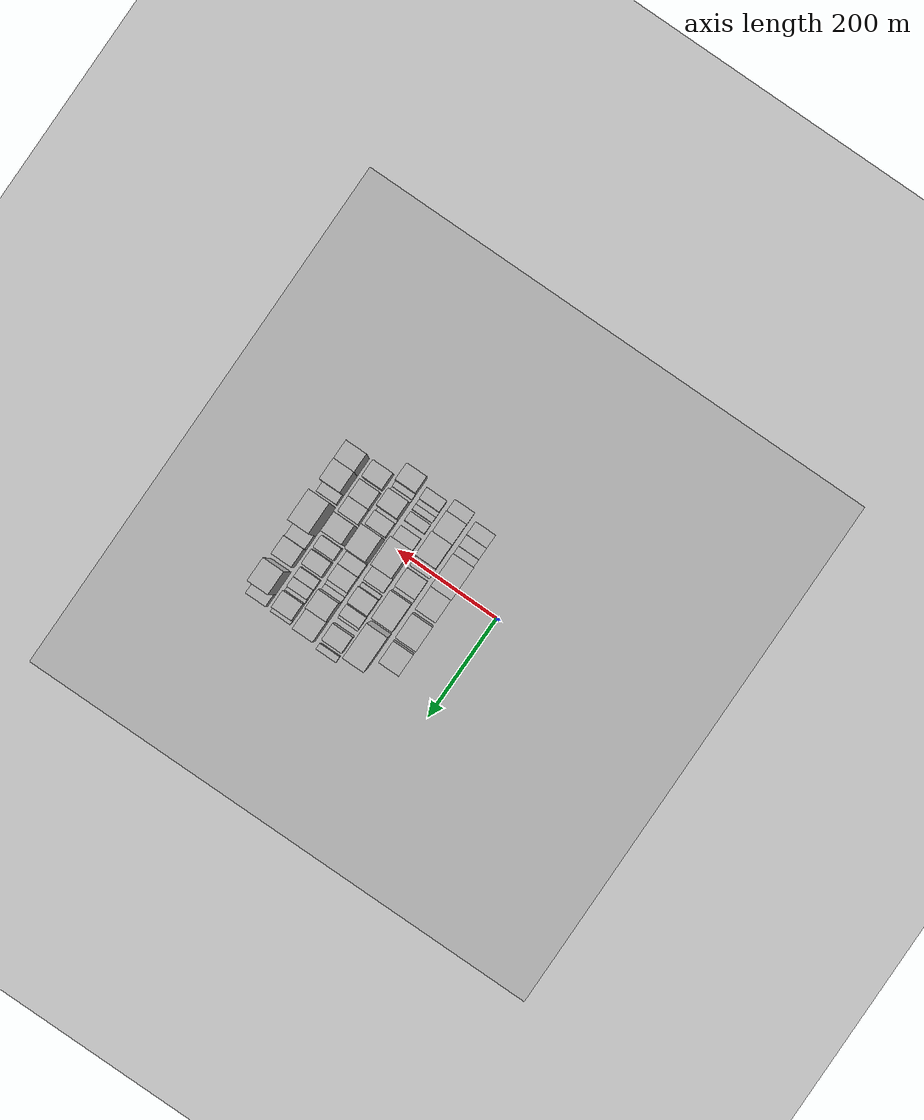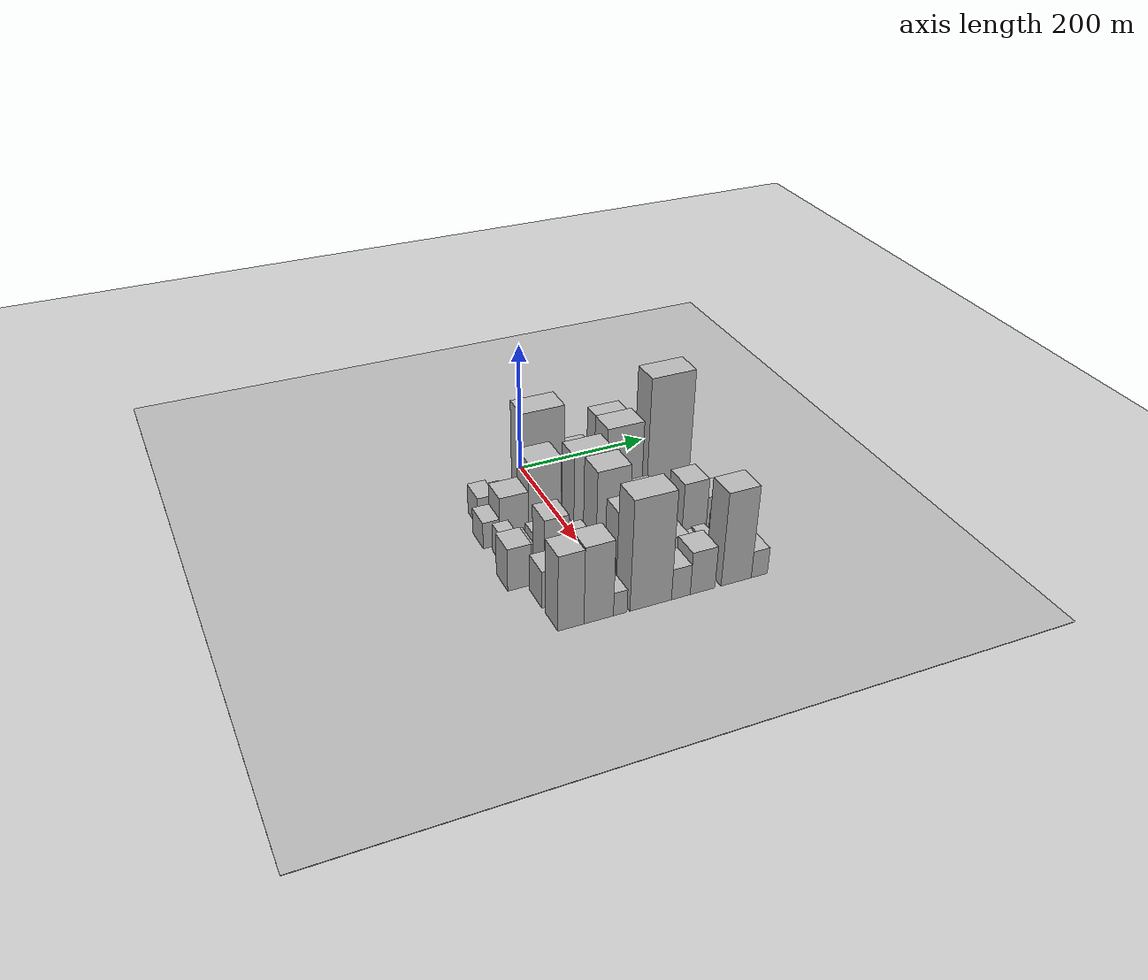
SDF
<sdf version="1.6">
 <world name="default">
  <include><name>ground_plane_1</name><uri>model://HANNAS_ground_plane</uri></include>
  <include>
   <name>ground_plane_2</name>
   <uri>model://HANNAS_ground_plane</uri>
   <pose>100 0 0  0 0 0</pose>
  </include>
  <model name="building_22">
   <static>1</static>
   <pose>100.0000 -98.4155 0 0.000000 0.000000 0.000000</pose>
   <link name="link">
    <pose>0 0 24.00 0 0 0</pose>
    <collision name="collision"><geometry><box><size>40.0000 26.1698 48.0000</size></box></geometry></collision>
    <visual name="visual">
     <cast_shadows>0</cast_shadows>
     <geometry><box><size>40.0000 26.1698 48.0000</size></box></geometry>
     <material>
      <script>
       <uri>model://HANNAS_wall/materials/scripts</uri>
       <uri>model://HANNAS_wall/materials/textures</uri>
       <name>vrc/HANNAS_wall</name>
      </script>
     </material>
    </visual>
   </link>
  </model>
  <model name="building_23">
   <static>1</static>
   <pose>100.0000 -74.0926 0 0.000000 0.000000 0.000000</pose>
   <link name="link">
    <pose>0 0 21.00 0 0 0</pose>
    <collision name="collision"><geometry><box><size>40.0000 22.4760 42.0000</size></box></geometry></collision>
    <visual name="visual">
     <cast_shadows>0</cast_shadows>
     <geometry><box><size>40.0000 22.4760 42.0000</size></box></geometry>
     <material>
      <script>
       <uri>model://HANNAS_wall/materials/scripts</uri>
       <uri>model://HANNAS_wall/materials/textures</uri>
       <name>vrc/HANNAS_wall</name>
      </script>
     </material>
    </visual>
   </link>
  </model>
  <model name="building_24">
   <static>1</static>
   <pose>100.0000 -54.2454 0 0.000000 0.000000 0.000000</pose>
   <link name="link">
    <pose>0 0 16.50 0 0 0</pose>
    <collision name="collision"><geometry><box><size>40.0000 17.2185 33.0000</size></box></geometry></collision>
    <visual name="visual">
     <cast_shadows>0</cast_shadows>
     <geometry><box><size>40.0000 17.2185 33.0000</size></box></geometry>
     <material>
      <script>
       <uri>model://HANNAS_wall/materials/scripts</uri>
       <uri>model://HANNAS_wall/materials/textures</uri>
       <name>vrc/HANNAS_wall</name>
      </script>
     </material>
    </visual>
   </link>
  </model>
  <model name="building_25">
   <static>1</static>
   <pose>100.0000 -14.2065 0 0.000000 0.000000 0.000000</pose>
   <link name="link">
    <pose>0 0 82.50 0 0 0</pose>
    <collision name="collision"><geometry><box><size>40.0000 62.8592 165.0000</size></box></geometry></collision>
    <visual name="visual">
     <cast_shadows>0</cast_shadows>
     <geometry><box><size>40.0000 62.8592 165.0000</size></box></geometry>
     <material>
      <script>
       <uri>model://HANNAS_wall/materials/scripts</uri>
       <uri>model://HANNAS_wall/materials/textures</uri>
       <name>vrc/HANNAS_wall</name>
      </script>
     </material>
    </visual>
   </link>
  </model>
  <model name="building_26">
   <static>1</static>
   <pose>100.0000 39.8798 0 0.000000 0.000000 0.000000</pose>
   <link name="link">
    <pose>0 0 43.50 0 0 0</pose>
    <collision name="collision"><geometry><box><size>40.0000 45.3134 87.0000</size></box></geometry></collision>
    <visual name="visual">
     <cast_shadows>0</cast_shadows>
     <geometry><box><size>40.0000 45.3134 87.0000</size></box></geometry>
     <material>
      <script>
       <uri>model://HANNAS_wall/materials/scripts</uri>
       <uri>model://HANNAS_wall/materials/textures</uri>
       <name>vrc/HANNAS_wall</name>
      </script>
     </material>
    </visual>
   </link>
  </model>
  <model name="building_27">
   <static>1</static>
   <pose>100.0000 93.4120 0 0.000000 0.000000 0.000000</pose>
   <link name="link">
    <pose>0 0 64.50 0 0 0</pose>
    <collision name="collision"><geometry><box><size>40.0000 47.7509 129.0000</size></box></geometry></collision>
    <visual name="visual">
     <cast_shadows>0</cast_shadows>
     <geometry><box><size>40.0000 47.7509 129.0000</size></box></geometry>
     <material>
      <script>
       <uri>model://HANNAS_wall/materials/scripts</uri>
       <uri>model://HANNAS_wall/materials/textures</uri>
       <name>vrc/HANNAS_wall</name>
      </script>
     </material>
    </visual>
   </link>
  </model>
  <model name="building_28">
   <static>1</static>
   <pose>100.0000 146.5997 0 0.000000 0.000000 0.000000</pose>
   <link name="link">
    <pose>0 0 37.50 0 0 0</pose>
    <collision name="collision"><geometry><box><size>40.0000 42.6245 75.0000</size></box></geometry></collision>
    <visual name="visual">
     <cast_shadows>0</cast_shadows>
     <geometry><box><size>40.0000 42.6245 75.0000</size></box></geometry>
     <material>
      <script>
       <uri>model://HANNAS_wall/materials/scripts</uri>
       <uri>model://HANNAS_wall/materials/textures</uri>
       <name>vrc/HANNAS_wall</name>
      </script>
     </material>
    </visual>
   </link>
  </model>
  <model name="building_64">
   <static>1</static>
   <pose>149.0000 -110.4302 0 0.000000 0.000000 0.000000</pose>
   <link name="link">
    <pose>0 0 21.00 0 0 0</pose>
    <collision name="collision"><geometry><box><size>40.0000 24.3075 42.0000</size></box></geometry></collision>
    <visual name="visual">
     <cast_shadows>0</cast_shadows>
     <geometry><box><size>40.0000 24.3075 42.0000</size></box></geometry>
     <material>
      <script>
       <uri>model://HANNAS_wall/materials/scripts</uri>
       <uri>model://HANNAS_wall/materials/textures</uri>
       <name>vrc/HANNAS_wall</name>
      </script>
     </material>
    </visual>
   </link>
  </model>
  <model name="building_65">
   <static>1</static>
   <pose>149.0000 -77.4382 0 0.000000 0.000000 0.000000</pose>
   <link name="link">
    <pose>0 0 37.50 0 0 0</pose>
    <collision name="collision"><geometry><box><size>40.0000 41.6766 75.0000</size></box></geometry></collision>
    <visual name="visual">
     <cast_shadows>0</cast_shadows>
     <geometry><box><size>40.0000 41.6766 75.0000</size></box></geometry>
     <material>
      <script>
       <uri>model://HANNAS_wall/materials/scripts</uri>
       <uri>model://HANNAS_wall/materials/textures</uri>
       <name>vrc/HANNAS_wall</name>
      </script>
     </material>
    </visual>
   </link>
  </model>
  <model name="building_66">
   <static>1</static>
   <pose>149.0000 -33.0633 0 0.000000 0.000000 0.000000</pose>
   <link name="link">
    <pose>0 0 60.00 0 0 0</pose>
    <collision name="collision"><geometry><box><size>40.0000 47.0731 120.0000</size></box></geometry></collision>
    <visual name="visual">
     <cast_shadows>0</cast_shadows>
     <geometry><box><size>40.0000 47.0731 120.0000</size></box></geometry>
     <material>
      <script>
       <uri>model://HANNAS_wall/materials/scripts</uri>
       <uri>model://HANNAS_wall/materials/textures</uri>
       <name>vrc/HANNAS_wall</name>
      </script>
     </material>
    </visual>
   </link>
  </model>
  <model name="building_67">
   <static>1</static>
   <pose>149.0000 -0.1953 0 0.000000 0.000000 0.000000</pose>
   <link name="link">
    <pose>0 0 16.50 0 0 0</pose>
    <collision name="collision"><geometry><box><size>40.0000 18.6629 33.0000</size></box></geometry></collision>
    <visual name="visual">
     <cast_shadows>0</cast_shadows>
     <geometry><box><size>40.0000 18.6629 33.0000</size></box></geometry>
     <material>
      <script>
       <uri>model://HANNAS_wall/materials/scripts</uri>
       <uri>model://HANNAS_wall/materials/textures</uri>
       <name>vrc/HANNAS_wall</name>
      </script>
     </material>
    </visual>
   </link>
  </model>
  <model name="building_68">
   <static>1</static>
   <pose>149.0000 32.4968 0 0.000000 0.000000 0.000000</pose>
   <link name="link">
    <pose>0 0 36.00 0 0 0</pose>
    <collision name="collision"><geometry><box><size>40.0000 36.7213 72.0000</size></box></geometry></collision>
    <visual name="visual">
     <cast_shadows>0</cast_shadows>
     <geometry><box><size>40.0000 36.7213 72.0000</size></box></geometry>
     <material>
      <script>
       <uri>model://HANNAS_wall/materials/scripts</uri>
       <uri>model://HANNAS_wall/materials/textures</uri>
       <name>vrc/HANNAS_wall</name>
      </script>
     </material>
    </visual>
   </link>
  </model>
  <model name="building_69">
   <static>1</static>
   <pose>149.0000 54.6834 0 0.000000 0.000000 0.000000</pose>
   <link name="link">
    <pose>0 0 9.00 0 0 0</pose>
    <collision name="collision"><geometry><box><size>40.0000 7.6520 18.0000</size></box></geometry></collision>
    <visual name="visual">
     <cast_shadows>0</cast_shadows>
     <geometry><box><size>40.0000 7.6520 18.0000</size></box></geometry>
     <material>
      <script>
       <uri>model://HANNAS_wall/materials/scripts</uri>
       <uri>model://HANNAS_wall/materials/textures</uri>
       <name>vrc/HANNAS_wall</name>
      </script>
     </material>
    </visual>
   </link>
  </model>
  <model name="building_70">
   <static>1</static>
   <pose>149.0000 85.5935 0 0.000000 0.000000 0.000000</pose>
   <link name="link">
    <pose>0 0 72.00 0 0 0</pose>
    <collision name="collision"><geometry><box><size>40.0000 54.1682 144.0000</size></box></geometry></collision>
    <visual name="visual">
     <cast_shadows>0</cast_shadows>
     <geometry><box><size>40.0000 54.1682 144.0000</size></box></geometry>
     <material>
      <script>
       <uri>model://HANNAS_wall/materials/scripts</uri>
       <uri>model://HANNAS_wall/materials/textures</uri>
       <name>vrc/HANNAS_wall</name>
      </script>
     </material>
    </visual>
   </link>
  </model>
  <model name="building_71">
   <static>1</static>
   <pose>149.0000 153.6814 0 0.000000 0.000000 0.000000</pose>
   <link name="link">
    <pose>0 0 103.50 0 0 0</pose>
    <collision name="collision"><geometry><box><size>40.0000 66.0074 207.0000</size></box></geometry></collision>
    <visual name="visual">
     <cast_shadows>0</cast_shadows>
     <geometry><box><size>40.0000 66.0074 207.0000</size></box></geometry>
     <material>
      <script>
       <uri>model://HANNAS_wall/materials/scripts</uri>
       <uri>model://HANNAS_wall/materials/textures</uri>
       <name>vrc/HANNAS_wall</name>
      </script>
     </material>
    </visual>
   </link>
  </model>
  <model name="building_112">
   <static>1</static>
   <pose>198.0000 -101.4188 0 0.000000 0.000000 0.000000</pose>
   <link name="link">
    <pose>0 0 22.50 0 0 0</pose>
    <collision name="collision"><geometry><box><size>40.0000 22.6207 45.0000</size></box></geometry></collision>
    <visual name="visual">
     <cast_shadows>0</cast_shadows>
     <geometry><box><size>40.0000 22.6207 45.0000</size></box></geometry>
     <material>
      <script>
       <uri>model://HANNAS_wall/materials/scripts</uri>
       <uri>model://HANNAS_wall/materials/textures</uri>
       <name>vrc/HANNAS_wall</name>
      </script>
     </material>
    </visual>
   </link>
  </model>
  <model name="building_113">
   <static>1</static>
   <pose>198.0000 -85.3148 0 0.000000 0.000000 0.000000</pose>
   <link name="link">
    <pose>0 0 10.50 0 0 0</pose>
    <collision name="collision"><geometry><box><size>40.0000 9.5873 21.0000</size></box></geometry></collision>
    <visual name="visual">
     <cast_shadows>0</cast_shadows>
     <geometry><box><size>40.0000 9.5873 21.0000</size></box></geometry>
     <material>
      <script>
       <uri>model://HANNAS_wall/materials/scripts</uri>
       <uri>model://HANNAS_wall/materials/textures</uri>
       <name>vrc/HANNAS_wall</name>
      </script>
     </material>
    </visual>
   </link>
  </model>
  <model name="building_114">
   <static>1</static>
   <pose>198.0000 -74.9453 0 0.000000 0.000000 0.000000</pose>
   <link name="link">
    <pose>0 0 13.50 0 0 0</pose>
    <collision name="collision"><geometry><box><size>40.0000 11.1517 27.0000</size></box></geometry></collision>
    <visual name="visual">
     <cast_shadows>0</cast_shadows>
     <geometry><box><size>40.0000 11.1517 27.0000</size></box></geometry>
     <material>
      <script>
       <uri>model://HANNAS_wall/materials/scripts</uri>
       <uri>model://HANNAS_wall/materials/textures</uri>
       <name>vrc/HANNAS_wall</name>
      </script>
     </material>
    </visual>
   </link>
  </model>
  <model name="building_115">
   <static>1</static>
   <pose>198.0000 -56.2524 0 0.000000 0.000000 0.000000</pose>
   <link name="link">
    <pose>0 0 16.50 0 0 0</pose>
    <collision name="collision"><geometry><box><size>40.0000 18.2341 33.0000</size></box></geometry></collision>
    <visual name="visual">
     <cast_shadows>0</cast_shadows>
     <geometry><box><size>40.0000 18.2341 33.0000</size></box></geometry>
     <material>
      <script>
       <uri>model://HANNAS_wall/materials/scripts</uri>
       <uri>model://HANNAS_wall/materials/textures</uri>
       <name>vrc/HANNAS_wall</name>
      </script>
     </material>
    </visual>
   </link>
  </model>
  <model name="building_116">
   <static>1</static>
   <pose>198.0000 -24.7042 0 0.000000 0.000000 0.000000</pose>
   <link name="link">
    <pose>0 0 21.00 0 0 0</pose>
    <collision name="collision"><geometry><box><size>40.0000 24.8623 42.0000</size></box></geometry></collision>
    <visual name="visual">
     <cast_shadows>0</cast_shadows>
     <geometry><box><size>40.0000 24.8623 42.0000</size></box></geometry>
     <material>
      <script>
       <uri>model://HANNAS_wall/materials/scripts</uri>
       <uri>model://HANNAS_wall/materials/textures</uri>
       <name>vrc/HANNAS_wall</name>
      </script>
     </material>
    </visual>
   </link>
  </model>
  <model name="building_117">
   <static>1</static>
   <pose>198.0000 15.4070 0 0.000000 0.000000 0.000000</pose>
   <link name="link">
    <pose>0 0 73.50 0 0 0</pose>
    <collision name="collision"><geometry><box><size>40.0000 55.3601 147.0000</size></box></geometry></collision>
    <visual name="visual">
     <cast_shadows>0</cast_shadows>
     <geometry><box><size>40.0000 55.3601 147.0000</size></box></geometry>
     <material>
      <script>
       <uri>model://HANNAS_wall/materials/scripts</uri>
       <uri>model://HANNAS_wall/materials/textures</uri>
       <name>vrc/HANNAS_wall</name>
      </script>
     </material>
    </visual>
   </link>
  </model>
  <model name="building_118">
   <static>1</static>
   <pose>198.0000 57.2891 0 0.000000 0.000000 0.000000</pose>
   <link name="link">
    <pose>0 0 24.00 0 0 0</pose>
    <collision name="collision"><geometry><box><size>40.0000 28.4041 48.0000</size></box></geometry></collision>
    <visual name="visual">
     <cast_shadows>0</cast_shadows>
     <geometry><box><size>40.0000 28.4041 48.0000</size></box></geometry>
     <material>
      <script>
       <uri>model://HANNAS_wall/materials/scripts</uri>
       <uri>model://HANNAS_wall/materials/textures</uri>
       <name>vrc/HANNAS_wall</name>
      </script>
     </material>
    </visual>
   </link>
  </model>
  <model name="building_119">
   <static>1</static>
   <pose>198.0000 80.6497 0 0.000000 0.000000 0.000000</pose>
   <link name="link">
    <pose>0 0 9.00 0 0 0</pose>
    <collision name="collision"><geometry><box><size>40.0000 8.3170 18.0000</size></box></geometry></collision>
    <visual name="visual">
     <cast_shadows>0</cast_shadows>
     <geometry><box><size>40.0000 8.3170 18.0000</size></box></geometry>
     <material>
      <script>
       <uri>model://HANNAS_wall/materials/scripts</uri>
       <uri>model://HANNAS_wall/materials/textures</uri>
       <name>vrc/HANNAS_wall</name>
      </script>
     </material>
    </visual>
   </link>
  </model>
  <model name="building_120">
   <static>1</static>
   <pose>198.0000 100.9588 0 0.000000 0.000000 0.000000</pose>
   <link name="link">
    <pose>0 0 31.50 0 0 0</pose>
    <collision name="collision"><geometry><box><size>40.0000 32.3012 63.0000</size></box></geometry></collision>
    <visual name="visual">
     <cast_shadows>0</cast_shadows>
     <geometry><box><size>40.0000 32.3012 63.0000</size></box></geometry>
     <material>
      <script>
       <uri>model://HANNAS_wall/materials/scripts</uri>
       <uri>model://HANNAS_wall/materials/textures</uri>
       <name>vrc/HANNAS_wall</name>
      </script>
     </material>
    </visual>
   </link>
  </model>
  <model name="building_121">
   <static>1</static>
   <pose>198.0000 131.2037 0 0.000000 0.000000 0.000000</pose>
   <link name="link">
    <pose>0 0 21.00 0 0 0</pose>
    <collision name="collision"><geometry><box><size>40.0000 22.1886 42.0000</size></box></geometry></collision>
    <visual name="visual">
     <cast_shadows>0</cast_shadows>
     <geometry><box><size>40.0000 22.1886 42.0000</size></box></geometry>
     <material>
      <script>
       <uri>model://HANNAS_wall/materials/scripts</uri>
       <uri>model://HANNAS_wall/materials/textures</uri>
       <name>vrc/HANNAS_wall</name>
      </script>
     </material>
    </visual>
   </link>
  </model>
  <model name="building_122">
   <static>1</static>
   <pose>198.0000 145.3058 0 0.000000 0.000000 0.000000</pose>
   <link name="link">
    <pose>0 0 7.50 0 0 0</pose>
    <collision name="collision"><geometry><box><size>40.0000 6.0156 15.0000</size></box></geometry></collision>
    <visual name="visual">
     <cast_shadows>0</cast_shadows>
     <geometry><box><size>40.0000 6.0156 15.0000</size></box></geometry>
     <material>
      <script>
       <uri>model://HANNAS_wall/materials/scripts</uri>
       <uri>model://HANNAS_wall/materials/textures</uri>
       <name>vrc/HANNAS_wall</name>
      </script>
     </material>
    </visual>
   </link>
  </model>
  <model name="building_123">
   <static>1</static>
   <pose>198.0000 174.6820 0 0.000000 0.000000 0.000000</pose>
   <link name="link">
    <pose>0 0 30.00 0 0 0</pose>
    <collision name="collision"><geometry><box><size>40.0000 32.7369 60.0000</size></box></geometry></collision>
    <visual name="visual">
     <cast_shadows>0</cast_shadows>
     <geometry><box><size>40.0000 32.7369 60.0000</size></box></geometry>
     <material>
      <script>
       <uri>model://HANNAS_wall/materials/scripts</uri>
       <uri>model://HANNAS_wall/materials/textures</uri>
       <name>vrc/HANNAS_wall</name>
      </script>
     </material>
    </visual>
   </link>
  </model>
  <model name="building_124">
   <static>1</static>
   <pose>198.0000 204.9367 0 0.000000 0.000000 0.000000</pose>
   <link name="link">
    <pose>0 0 13.50 0 0 0</pose>
    <collision name="collision"><geometry><box><size>40.0000 11.7725 27.0000</size></box></geometry></collision>
    <visual name="visual">
     <cast_shadows>0</cast_shadows>
     <geometry><box><size>40.0000 11.7725 27.0000</size></box></geometry>
     <material>
      <script>
       <uri>model://HANNAS_wall/materials/scripts</uri>
       <uri>model://HANNAS_wall/materials/textures</uri>
       <name>vrc/HANNAS_wall</name>
      </script>
     </material>
    </visual>
   </link>
  </model>
  <model name="building_164">
   <static>1</static>
   <pose>247.0000 -109.6059 0 0.000000 0.000000 0.000000</pose>
   <link name="link">
    <pose>0 0 33.00 0 0 0</pose>
    <collision name="collision"><geometry><box><size>40.0000 33.3598 66.0000</size></box></geometry></collision>
    <visual name="visual">
     <cast_shadows>0</cast_shadows>
     <geometry><box><size>40.0000 33.3598 66.0000</size></box></geometry>
     <material>
      <script>
       <uri>model://HANNAS_wall/materials/scripts</uri>
       <uri>model://HANNAS_wall/materials/textures</uri>
       <name>vrc/HANNAS_wall</name>
      </script>
     </material>
    </visual>
   </link>
  </model>
  <model name="building_165">
   <static>1</static>
   <pose>247.0000 -87.3790 0 0.000000 0.000000 0.000000</pose>
   <link name="link">
    <pose>0 0 13.50 0 0 0</pose>
    <collision name="collision"><geometry><box><size>40.0000 11.0940 27.0000</size></box></geometry></collision>
    <visual name="visual">
     <cast_shadows>0</cast_shadows>
     <geometry><box><size>40.0000 11.0940 27.0000</size></box></geometry>
     <material>
      <script>
       <uri>model://HANNAS_wall/materials/scripts</uri>
       <uri>model://HANNAS_wall/materials/textures</uri>
       <name>vrc/HANNAS_wall</name>
      </script>
     </material>
    </visual>
   </link>
  </model>
  <model name="building_166">
   <static>1</static>
   <pose>247.0000 -78.3777 0 0.000000 0.000000 0.000000</pose>
   <link name="link">
    <pose>0 0 7.50 0 0 0</pose>
    <collision name="collision"><geometry><box><size>40.0000 6.9087 15.0000</size></box></geometry></collision>
    <visual name="visual">
     <cast_shadows>0</cast_shadows>
     <geometry><box><size>40.0000 6.9087 15.0000</size></box></geometry>
     <material>
      <script>
       <uri>model://HANNAS_wall/materials/scripts</uri>
       <uri>model://HANNAS_wall/materials/textures</uri>
       <name>vrc/HANNAS_wall</name>
      </script>
     </material>
    </visual>
   </link>
  </model>
  <model name="building_167">
   <static>1</static>
   <pose>247.0000 -57.8800 0 0.000000 0.000000 0.000000</pose>
   <link name="link">
    <pose>0 0 48.00 0 0 0</pose>
    <collision name="collision"><geometry><box><size>40.0000 34.0868 96.0000</size></box></geometry></collision>
    <visual name="visual">
     <cast_shadows>0</cast_shadows>
     <geometry><box><size>40.0000 34.0868 96.0000</size></box></geometry>
     <material>
      <script>
       <uri>model://HANNAS_wall/materials/scripts</uri>
       <uri>model://HANNAS_wall/materials/textures</uri>
       <name>vrc/HANNAS_wall</name>
      </script>
     </material>
    </visual>
   </link>
  </model>
  <model name="building_168">
   <static>1</static>
   <pose>247.0000 -37.2328 0 0.000000 0.000000 0.000000</pose>
   <link name="link">
    <pose>0 0 7.50 0 0 0</pose>
    <collision name="collision"><geometry><box><size>40.0000 7.2077 15.0000</size></box></geometry></collision>
    <visual name="visual">
     <cast_shadows>0</cast_shadows>
     <geometry><box><size>40.0000 7.2077 15.0000</size></box></geometry>
     <material>
      <script>
       <uri>model://HANNAS_wall/materials/scripts</uri>
       <uri>model://HANNAS_wall/materials/textures</uri>
       <name>vrc/HANNAS_wall</name>
      </script>
     </material>
    </visual>
   </link>
  </model>
  <model name="building_169">
   <static>1</static>
   <pose>247.0000 -19.4885 0 0.000000 0.000000 0.000000</pose>
   <link name="link">
    <pose>0 0 27.00 0 0 0</pose>
    <collision name="collision"><geometry><box><size>40.0000 28.2809 54.0000</size></box></geometry></collision>
    <visual name="visual">
     <cast_shadows>0</cast_shadows>
     <geometry><box><size>40.0000 28.2809 54.0000</size></box></geometry>
     <material>
      <script>
       <uri>model://HANNAS_wall/materials/scripts</uri>
       <uri>model://HANNAS_wall/materials/textures</uri>
       <name>vrc/HANNAS_wall</name>
      </script>
     </material>
    </visual>
   </link>
  </model>
  <model name="building_170">
   <static>1</static>
   <pose>247.0000 21.4061 0 0.000000 0.000000 0.000000</pose>
   <link name="link">
    <pose>0 0 75.00 0 0 0</pose>
    <collision name="collision"><geometry><box><size>40.0000 47.5081 150.0000</size></box></geometry></collision>
    <visual name="visual">
     <cast_shadows>0</cast_shadows>
     <geometry><box><size>40.0000 47.5081 150.0000</size></box></geometry>
     <material>
      <script>
       <uri>model://HANNAS_wall/materials/scripts</uri>
       <uri>model://HANNAS_wall/materials/textures</uri>
       <name>vrc/HANNAS_wall</name>
      </script>
     </material>
    </visual>
   </link>
  </model>
  <model name="building_171">
   <static>1</static>
   <pose>247.0000 60.8885 0 0.000000 0.000000 0.000000</pose>
   <link name="link">
    <pose>0 0 22.50 0 0 0</pose>
    <collision name="collision"><geometry><box><size>40.0000 25.4568 45.0000</size></box></geometry></collision>
    <visual name="visual">
     <cast_shadows>0</cast_shadows>
     <geometry><box><size>40.0000 25.4568 45.0000</size></box></geometry>
     <material>
      <script>
       <uri>model://HANNAS_wall/materials/scripts</uri>
       <uri>model://HANNAS_wall/materials/textures</uri>
       <name>vrc/HANNAS_wall</name>
      </script>
     </material>
    </visual>
   </link>
  </model>
  <model name="building_172">
   <static>1</static>
   <pose>247.0000 89.1669 0 0.000000 0.000000 0.000000</pose>
   <link name="link">
    <pose>0 0 27.00 0 0 0</pose>
    <collision name="collision"><geometry><box><size>40.0000 31.1001 54.0000</size></box></geometry></collision>
    <visual name="visual">
     <cast_shadows>0</cast_shadows>
     <geometry><box><size>40.0000 31.1001 54.0000</size></box></geometry>
     <material>
      <script>
       <uri>model://HANNAS_wall/materials/scripts</uri>
       <uri>model://HANNAS_wall/materials/textures</uri>
       <name>vrc/HANNAS_wall</name>
      </script>
     </material>
    </visual>
   </link>
  </model>
  <model name="building_173">
   <static>1</static>
   <pose>247.0000 109.0897 0 0.000000 0.000000 0.000000</pose>
   <link name="link">
    <pose>0 0 10.50 0 0 0</pose>
    <collision name="collision"><geometry><box><size>40.0000 8.7455 21.0000</size></box></geometry></collision>
    <visual name="visual">
     <cast_shadows>0</cast_shadows>
     <geometry><box><size>40.0000 8.7455 21.0000</size></box></geometry>
     <material>
      <script>
       <uri>model://HANNAS_wall/materials/scripts</uri>
       <uri>model://HANNAS_wall/materials/textures</uri>
       <name>vrc/HANNAS_wall</name>
      </script>
     </material>
    </visual>
   </link>
  </model>
  <model name="building_174">
   <static>1</static>
   <pose>247.0000 118.8512 0 0.000000 0.000000 0.000000</pose>
   <link name="link">
    <pose>0 0 12.00 0 0 0</pose>
    <collision name="collision"><geometry><box><size>40.0000 10.7775 24.0000</size></box></geometry></collision>
    <visual name="visual">
     <cast_shadows>0</cast_shadows>
     <geometry><box><size>40.0000 10.7775 24.0000</size></box></geometry>
     <material>
      <script>
       <uri>model://HANNAS_wall/materials/scripts</uri>
       <uri>model://HANNAS_wall/materials/textures</uri>
       <name>vrc/HANNAS_wall</name>
      </script>
     </material>
    </visual>
   </link>
  </model>
  <model name="building_175">
   <static>1</static>
   <pose>247.0000 142.6485 0 0.000000 0.000000 0.000000</pose>
   <link name="link">
    <pose>0 0 49.50 0 0 0</pose>
    <collision name="collision"><geometry><box><size>40.0000 36.8170 99.0000</size></box></geometry></collision>
    <visual name="visual">
     <cast_shadows>0</cast_shadows>
     <geometry><box><size>40.0000 36.8170 99.0000</size></box></geometry>
     <material>
      <script>
       <uri>model://HANNAS_wall/materials/scripts</uri>
       <uri>model://HANNAS_wall/materials/textures</uri>
       <name>vrc/HANNAS_wall</name>
      </script>
     </material>
    </visual>
   </link>
  </model>
  <model name="building_176">
   <static>1</static>
   <pose>247.0000 181.7290 0 0.000000 0.000000 0.000000</pose>
   <link name="link">
    <pose>0 0 34.50 0 0 0</pose>
    <collision name="collision"><geometry><box><size>40.0000 41.3440 69.0000</size></box></geometry></collision>
    <visual name="visual">
     <cast_shadows>0</cast_shadows>
     <geometry><box><size>40.0000 41.3440 69.0000</size></box></geometry>
     <material>
      <script>
       <uri>model://HANNAS_wall/materials/scripts</uri>
       <uri>model://HANNAS_wall/materials/textures</uri>
       <name>vrc/HANNAS_wall</name>
      </script>
     </material>
    </visual>
   </link>
  </model>
  <model name="building_219">
   <static>1</static>
   <pose>296.0000 -83.0125 0 0.000000 0.000000 0.000000</pose>
   <link name="link">
    <pose>0 0 28.50 0 0 0</pose>
    <collision name="collision"><geometry><box><size>40.0000 32.9712 57.0000</size></box></geometry></collision>
    <visual name="visual">
     <cast_shadows>0</cast_shadows>
     <geometry><box><size>40.0000 32.9712 57.0000</size></box></geometry>
     <material>
      <script>
       <uri>model://HANNAS_wall/materials/scripts</uri>
       <uri>model://HANNAS_wall/materials/textures</uri>
       <name>vrc/HANNAS_wall</name>
      </script>
     </material>
    </visual>
   </link>
  </model>
  <model name="building_220">
   <static>1</static>
   <pose>296.0000 -44.6100 0 0.000000 0.000000 0.000000</pose>
   <link name="link">
    <pose>0 0 28.50 0 0 0</pose>
    <collision name="collision"><geometry><box><size>40.0000 33.8337 57.0000</size></box></geometry></collision>
    <visual name="visual">
     <cast_shadows>0</cast_shadows>
     <geometry><box><size>40.0000 33.8337 57.0000</size></box></geometry>
     <material>
      <script>
       <uri>model://HANNAS_wall/materials/scripts</uri>
       <uri>model://HANNAS_wall/materials/textures</uri>
       <name>vrc/HANNAS_wall</name>
      </script>
     </material>
    </visual>
   </link>
  </model>
  <model name="building_221">
   <static>1</static>
   <pose>296.0000 -12.4900 0 0.000000 0.000000 0.000000</pose>
   <link name="link">
    <pose>0 0 25.50 0 0 0</pose>
    <collision name="collision"><geometry><box><size>40.0000 30.4063 51.0000</size></box></geometry></collision>
    <visual name="visual">
     <cast_shadows>0</cast_shadows>
     <geometry><box><size>40.0000 30.4063 51.0000</size></box></geometry>
     <material>
      <script>
       <uri>model://HANNAS_wall/materials/scripts</uri>
       <uri>model://HANNAS_wall/materials/textures</uri>
       <name>vrc/HANNAS_wall</name>
      </script>
     </material>
    </visual>
   </link>
  </model>
  <model name="building_222">
   <static>1</static>
   <pose>296.0000 25.3478 0 0.000000 0.000000 0.000000</pose>
   <link name="link">
    <pose>0 0 57.00 0 0 0</pose>
    <collision name="collision"><geometry><box><size>40.0000 37.2693 114.0000</size></box></geometry></collision>
    <visual name="visual">
     <cast_shadows>0</cast_shadows>
     <geometry><box><size>40.0000 37.2693 114.0000</size></box></geometry>
     <material>
      <script>
       <uri>model://HANNAS_wall/materials/scripts</uri>
       <uri>model://HANNAS_wall/materials/textures</uri>
       <name>vrc/HANNAS_wall</name>
      </script>
     </material>
    </visual>
   </link>
  </model>
  <model name="building_223">
   <static>1</static>
   <pose>296.0000 62.0898 0 0.000000 0.000000 0.000000</pose>
   <link name="link">
    <pose>0 0 24.00 0 0 0</pose>
    <collision name="collision"><geometry><box><size>40.0000 24.2147 48.0000</size></box></geometry></collision>
    <visual name="visual">
     <cast_shadows>0</cast_shadows>
     <geometry><box><size>40.0000 24.2147 48.0000</size></box></geometry>
     <material>
      <script>
       <uri>model://HANNAS_wall/materials/scripts</uri>
       <uri>model://HANNAS_wall/materials/textures</uri>
       <name>vrc/HANNAS_wall</name>
      </script>
     </material>
    </visual>
   </link>
  </model>
  <model name="building_224">
   <static>1</static>
   <pose>296.0000 92.7421 0 0.000000 0.000000 0.000000</pose>
   <link name="link">
    <pose>0 0 28.50 0 0 0</pose>
    <collision name="collision"><geometry><box><size>40.0000 29.0899 57.0000</size></box></geometry></collision>
    <visual name="visual">
     <cast_shadows>0</cast_shadows>
     <geometry><box><size>40.0000 29.0899 57.0000</size></box></geometry>
     <material>
      <script>
       <uri>model://HANNAS_wall/materials/scripts</uri>
       <uri>model://HANNAS_wall/materials/textures</uri>
       <name>vrc/HANNAS_wall</name>
      </script>
     </material>
    </visual>
   </link>
  </model>
  <model name="building_225">
   <static>1</static>
   <pose>296.0000 123.1011 0 0.000000 0.000000 0.000000</pose>
   <link name="link">
    <pose>0 0 16.50 0 0 0</pose>
    <collision name="collision"><geometry><box><size>40.0000 19.6282 33.0000</size></box></geometry></collision>
    <visual name="visual">
     <cast_shadows>0</cast_shadows>
     <geometry><box><size>40.0000 19.6282 33.0000</size></box></geometry>
     <material>
      <script>
       <uri>model://HANNAS_wall/materials/scripts</uri>
       <uri>model://HANNAS_wall/materials/textures</uri>
       <name>vrc/HANNAS_wall</name>
      </script>
     </material>
    </visual>
   </link>
  </model>
  <model name="building_226">
   <static>1</static>
   <pose>296.0000 142.6010 0 0.000000 0.000000 0.000000</pose>
   <link name="link">
    <pose>0 0 18.00 0 0 0</pose>
    <collision name="collision"><geometry><box><size>40.0000 19.3716 36.0000</size></box></geometry></collision>
    <visual name="visual">
     <cast_shadows>0</cast_shadows>
     <geometry><box><size>40.0000 19.3716 36.0000</size></box></geometry>
     <material>
      <script>
       <uri>model://HANNAS_wall/materials/scripts</uri>
       <uri>model://HANNAS_wall/materials/textures</uri>
       <name>vrc/HANNAS_wall</name>
      </script>
     </material>
    </visual>
   </link>
  </model>
  <model name="building_227">
   <static>1</static>
   <pose>296.0000 156.1678 0 0.000000 0.000000 0.000000</pose>
   <link name="link">
    <pose>0 0 9.00 0 0 0</pose>
    <collision name="collision"><geometry><box><size>40.0000 7.7618 18.0000</size></box></geometry></collision>
    <visual name="visual">
     <cast_shadows>0</cast_shadows>
     <geometry><box><size>40.0000 7.7618 18.0000</size></box></geometry>
     <material>
      <script>
       <uri>model://HANNAS_wall/materials/scripts</uri>
       <uri>model://HANNAS_wall/materials/textures</uri>
       <name>vrc/HANNAS_wall</name>
      </script>
     </material>
    </visual>
   </link>
  </model>
  <model name="building_228">
   <static>1</static>
   <pose>296.0000 176.8755 0 0.000000 0.000000 0.000000</pose>
   <link name="link">
    <pose>0 0 28.50 0 0 0</pose>
    <collision name="collision"><geometry><box><size>40.0000 33.6536 57.0000</size></box></geometry></collision>
    <visual name="visual">
     <cast_shadows>0</cast_shadows>
     <geometry><box><size>40.0000 33.6536 57.0000</size></box></geometry>
     <material>
      <script>
       <uri>model://HANNAS_wall/materials/scripts</uri>
       <uri>model://HANNAS_wall/materials/textures</uri>
       <name>vrc/HANNAS_wall</name>
      </script>
     </material>
    </visual>
   </link>
  </model>
  <model name="building_229">
   <static>1</static>
   <pose>296.0000 198.1638 0 0.000000 0.000000 0.000000</pose>
   <link name="link">
    <pose>0 0 9.00 0 0 0</pose>
    <collision name="collision"><geometry><box><size>40.0000 8.9232 18.0000</size></box></geometry></collision>
    <visual name="visual">
     <cast_shadows>0</cast_shadows>
     <geometry><box><size>40.0000 8.9232 18.0000</size></box></geometry>
     <material>
      <script>
       <uri>model://HANNAS_wall/materials/scripts</uri>
       <uri>model://HANNAS_wall/materials/textures</uri>
       <name>vrc/HANNAS_wall</name>
      </script>
     </material>
    </visual>
   </link>
  </model>
  <model name="building_272">
   <static>1</static>
   <pose>345.0000 -81.3118 0 0.000000 0.000000 0.000000</pose>
   <link name="link">
    <pose>0 0 57.00 0 0 0</pose>
    <collision name="collision"><geometry><box><size>40.0000 35.4254 114.0000</size></box></geometry></collision>
    <visual name="visual">
     <cast_shadows>0</cast_shadows>
     <geometry><box><size>40.0000 35.4254 114.0000</size></box></geometry>
     <material>
      <script>
       <uri>model://HANNAS_wall/materials/scripts</uri>
       <uri>model://HANNAS_wall/materials/textures</uri>
       <name>vrc/HANNAS_wall</name>
      </script>
     </material>
    </visual>
   </link>
  </model>
  <model name="building_273">
   <static>1</static>
   <pose>345.0000 -43.4260 0 0.000000 0.000000 0.000000</pose>
   <link name="link">
    <pose>0 0 58.50 0 0 0</pose>
    <collision name="collision"><geometry><box><size>40.0000 40.3463 117.0000</size></box></geometry></collision>
    <visual name="visual">
     <cast_shadows>0</cast_shadows>
     <geometry><box><size>40.0000 40.3463 117.0000</size></box></geometry>
     <material>
      <script>
       <uri>model://HANNAS_wall/materials/scripts</uri>
       <uri>model://HANNAS_wall/materials/textures</uri>
       <name>vrc/HANNAS_wall</name>
      </script>
     </material>
    </visual>
   </link>
  </model>
  <model name="building_274">
   <static>1</static>
   <pose>345.0000 -13.8048 0 0.000000 0.000000 0.000000</pose>
   <link name="link">
    <pose>0 0 18.00 0 0 0</pose>
    <collision name="collision"><geometry><box><size>40.0000 18.8959 36.0000</size></box></geometry></collision>
    <visual name="visual">
     <cast_shadows>0</cast_shadows>
     <geometry><box><size>40.0000 18.8959 36.0000</size></box></geometry>
     <material>
      <script>
       <uri>model://HANNAS_wall/materials/scripts</uri>
       <uri>model://HANNAS_wall/materials/textures</uri>
       <name>vrc/HANNAS_wall</name>
      </script>
     </material>
    </visual>
   </link>
  </model>
  <model name="building_275">
   <static>1</static>
   <pose>345.0000 29.0346 0 0.000000 0.000000 0.000000</pose>
   <link name="link">
    <pose>0 0 84.00 0 0 0</pose>
    <collision name="collision"><geometry><box><size>40.0000 58.7830 168.0000</size></box></geometry></collision>
    <visual name="visual">
     <cast_shadows>0</cast_shadows>
     <geometry><box><size>40.0000 58.7830 168.0000</size></box></geometry>
     <material>
      <script>
       <uri>model://HANNAS_wall/materials/scripts</uri>
       <uri>model://HANNAS_wall/materials/textures</uri>
       <name>vrc/HANNAS_wall</name>
      </script>
     </material>
    </visual>
   </link>
  </model>
  <model name="building_276">
   <static>1</static>
   <pose>345.0000 71.8771 0 0.000000 0.000000 0.000000</pose>
   <link name="link">
    <pose>0 0 24.00 0 0 0</pose>
    <collision name="collision"><geometry><box><size>40.0000 26.9020 48.0000</size></box></geometry></collision>
    <visual name="visual">
     <cast_shadows>0</cast_shadows>
     <geometry><box><size>40.0000 26.9020 48.0000</size></box></geometry>
     <material>
      <script>
       <uri>model://HANNAS_wall/materials/scripts</uri>
       <uri>model://HANNAS_wall/materials/textures</uri>
       <name>vrc/HANNAS_wall</name>
      </script>
     </material>
    </visual>
   </link>
  </model>
  <model name="building_277">
   <static>1</static>
   <pose>345.0000 103.3448 0 0.000000 0.000000 0.000000</pose>
   <link name="link">
    <pose>0 0 33.00 0 0 0</pose>
    <collision name="collision"><geometry><box><size>40.0000 36.0334 66.0000</size></box></geometry></collision>
    <visual name="visual">
     <cast_shadows>0</cast_shadows>
     <geometry><box><size>40.0000 36.0334 66.0000</size></box></geometry>
     <material>
      <script>
       <uri>model://HANNAS_wall/materials/scripts</uri>
       <uri>model://HANNAS_wall/materials/textures</uri>
       <name>vrc/HANNAS_wall</name>
      </script>
     </material>
    </visual>
   </link>
  </model>
  <model name="building_278">
   <static>1</static>
   <pose>345.0000 152.7475 0 0.000000 0.000000 0.000000</pose>
   <link name="link">
    <pose>0 0 72.00 0 0 0</pose>
    <collision name="collision"><geometry><box><size>40.0000 44.7719 144.0000</size></box></geometry></collision>
    <visual name="visual">
     <cast_shadows>0</cast_shadows>
     <geometry><box><size>40.0000 44.7719 144.0000</size></box></geometry>
     <material>
      <script>
       <uri>model://HANNAS_wall/materials/scripts</uri>
       <uri>model://HANNAS_wall/materials/textures</uri>
       <name>vrc/HANNAS_wall</name>
      </script>
     </material>
    </visual>
   </link>
  </model>
  <model name="building_279">
   <static>1</static>
   <pose>345.0000 187.3001 0 0.000000 0.000000 0.000000</pose>
   <link name="link">
    <pose>0 0 21.00 0 0 0</pose>
    <collision name="collision"><geometry><box><size>40.0000 24.3334 42.0000</size></box></geometry></collision>
    <visual name="visual">
     <cast_shadows>0</cast_shadows>
     <geometry><box><size>40.0000 24.3334 42.0000</size></box></geometry>
     <material>
      <script>
       <uri>model://HANNAS_wall/materials/scripts</uri>
       <uri>model://HANNAS_wall/materials/textures</uri>
       <name>vrc/HANNAS_wall</name>
      </script>
     </material>
    </visual>
   </link>
  </model>
 </world>
</sdf>
